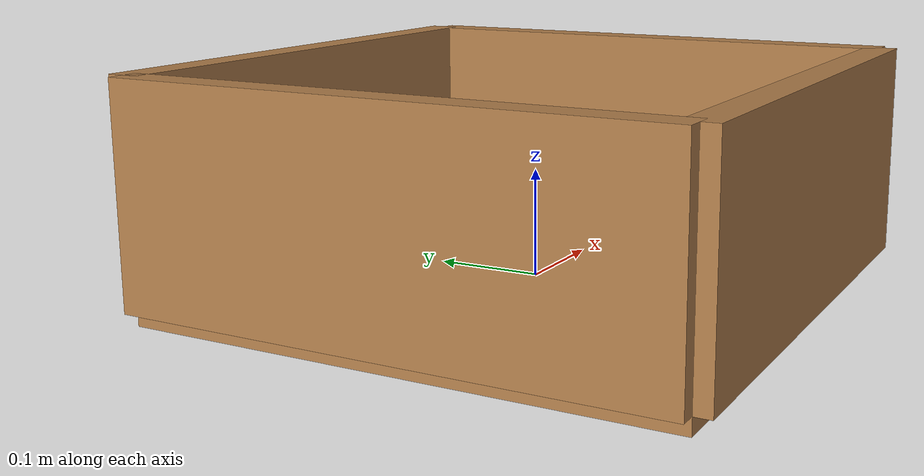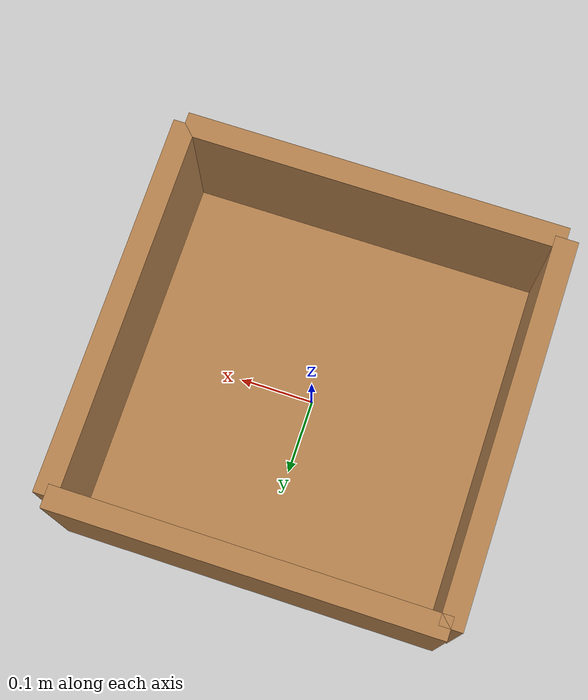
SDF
<?xml version="1.0" ?>
<sdf version="1.5">
  <model name="my_box">
    <static>true</static>
    <link name="link">
      <collision name="surface">
        <pose>0 0 0 0 0 0</pose>
        <geometry>
          <box>
            <size>0.5 0.5 0.03</size>
          </box>
        </geometry>
        <surface>
          <friction>
            <ode>
              <mu>0.6</mu>
              <mu2>0.6</mu2>
            </ode>
          </friction>
        </surface>
      </collision>
      <visual name="visual1">
        <pose>0 0 0 0 0 0</pose>
        <geometry>
          <box>
            <size>0.5 0.5 0.03</size>
          </box>
        </geometry>
        <material>
          <script>
            <uri>file://media/materials/scripts/gazebo.material</uri>
            <name>Gazebo/Wood</name>
          </script>
        </material>
      </visual>
      <collision name="front_left_leg">
        <pose>0 0.25 0.1 1.57 0 0</pose>
        <geometry>
          <box>
            <size>0.5 0.2 0.03</size>
          </box>
        </geometry>
      </collision>
      <visual name="front_left_leg">
        <pose>0 0.25 0.1 1.57 0 0</pose>
        <geometry>
          <box>
            <size>0.5 0.2 0.03</size>
          </box>
        </geometry>
        <material>
          <script>
            <uri>file://media/materials/scripts/gazebo.material</uri>
            <name>Gazebo/Wood</name>
          </script>
        </material>
      </visual>
      <collision name="front_right_leg">
        <pose>0.25 0 0.1 0 1.57 0</pose>
        <geometry>
          <box>
            <size>0.2 0.5 0.03</size>
          </box>
        </geometry>
      </collision>
      <visual name="front_right_leg">
        <pose>0.25 0 0.1 0 1.57 0</pose>
        <geometry>
          <box>
            <size>0.2 0.5 0.03</size>
          </box>
        </geometry>
        <material>
          <script>
            <uri>file://media/materials/scripts/gazebo.material</uri>
            <name>Gazebo/Wood</name>
          </script>
        </material>
      </visual>
      <collision name="back_right_leg">
        <pose>0 -0.25 0.1 1.57 0 0</pose>
        <geometry>
          <box>
            <size>0.5 0.2 0.03</size>
          </box>
        </geometry>
      </collision>
      <visual name="back_right_leg">
        <pose>0 -0.25 0.1 1.57 0 0</pose>
        <geometry>
          <box>
            <size>0.5 0.2 0.03</size>
          </box>
        </geometry>
        <material>
          <script>
            <uri>file://media/materials/scripts/gazebo.material</uri>
            <name>Gazebo/Wood</name>
          </script>
        </material>
      </visual>
      <collision name="back_left_leg">
        <pose>-0.25 0 0.1 0 1.57 0</pose>
        <geometry>
          <box>
            <size>0.2 0.5 0.03</size>
          </box>
        </geometry>
      </collision>
      <visual name="back_left_leg">
        <pose>-0.25 0 0.1 0 1.57 0</pose>
        <geometry>
          <box>
            <size>0.2 0.5 0.03</size>
          </box>
        </geometry>
        <material>
          <script>
            <uri>file://media/materials/scripts/gazebo.material</uri>
            <name>Gazebo/Wood</name>
          </script>
        </material>
      </visual>
    </link>
  </model>
</sdf>
